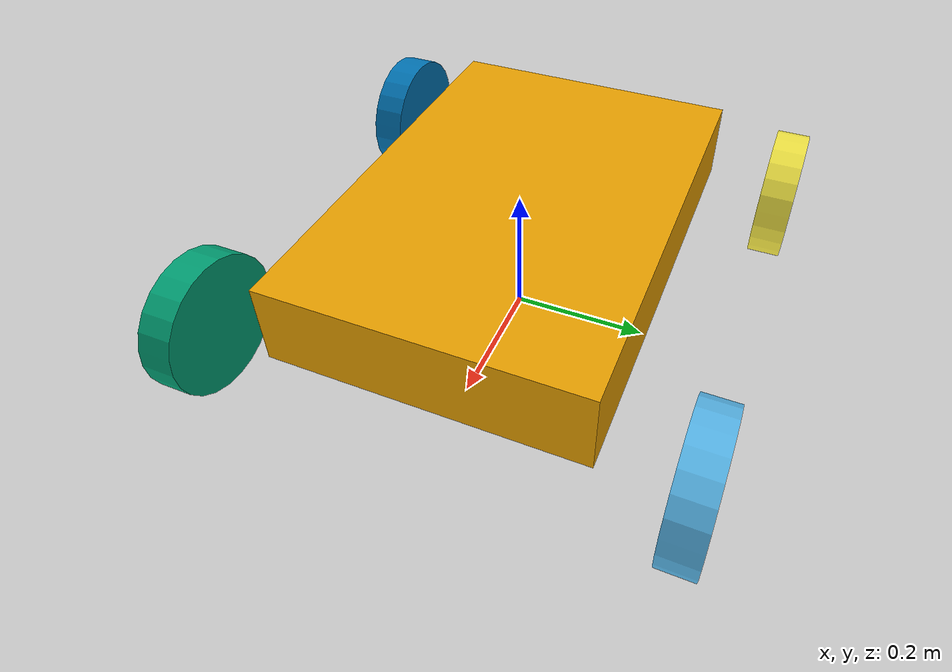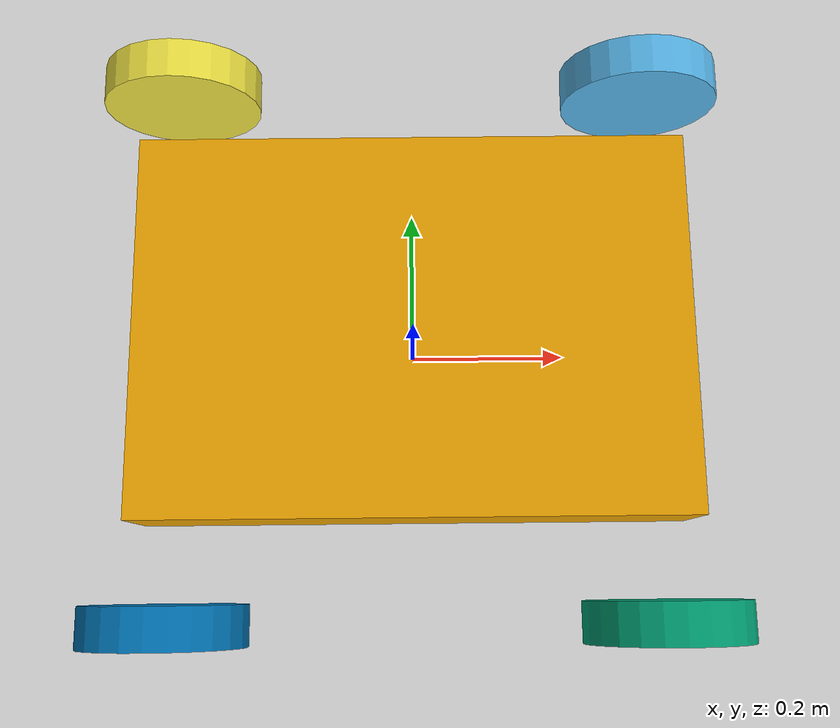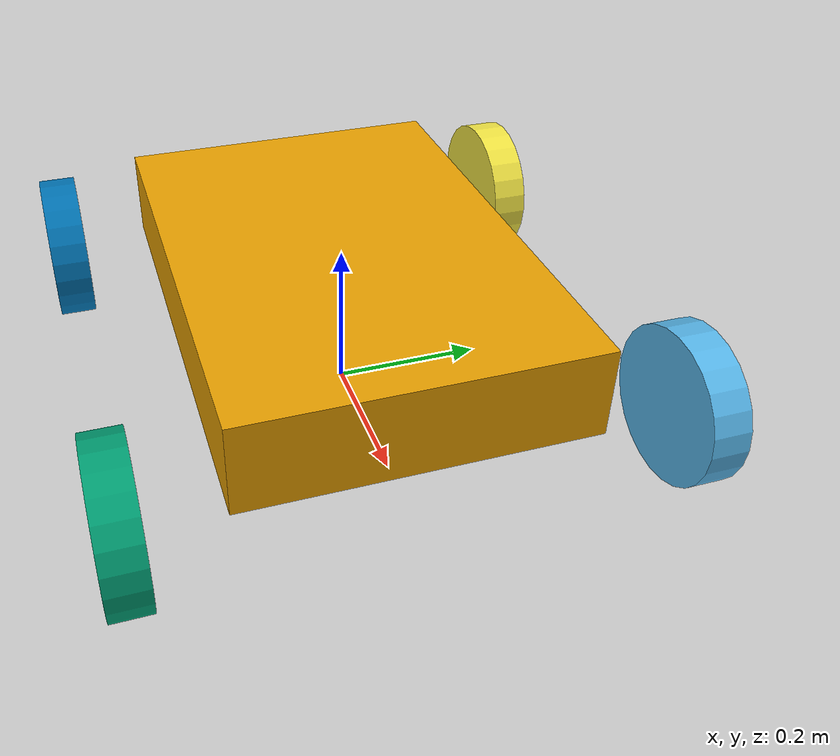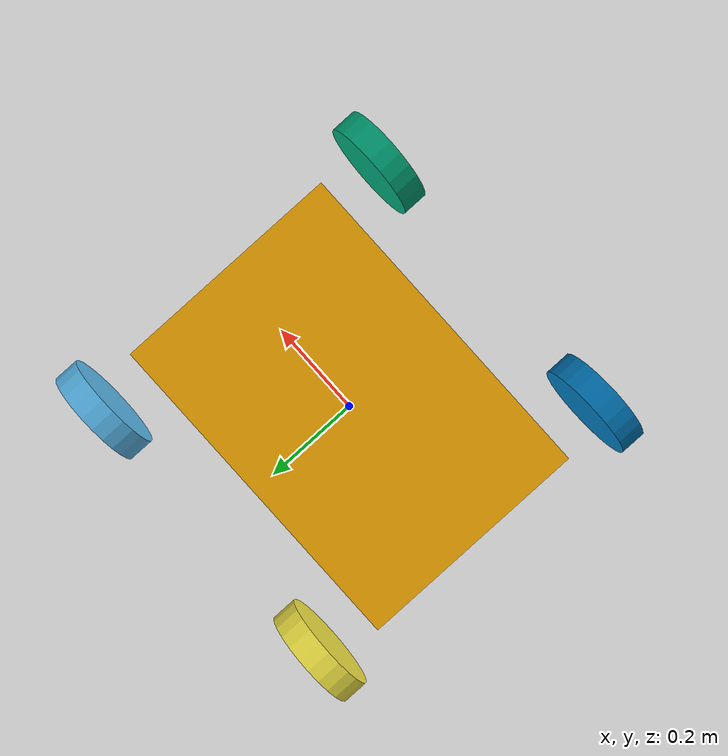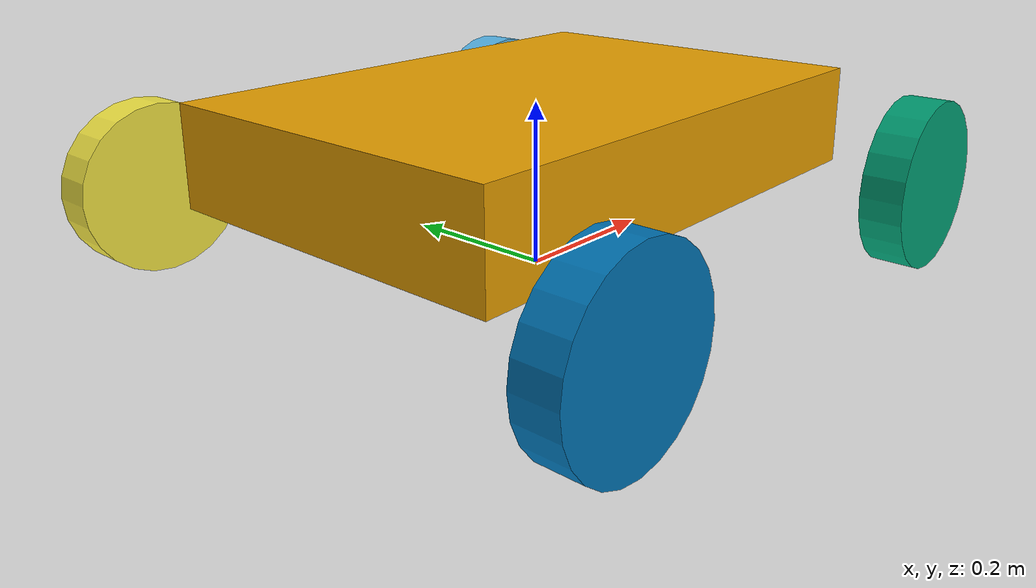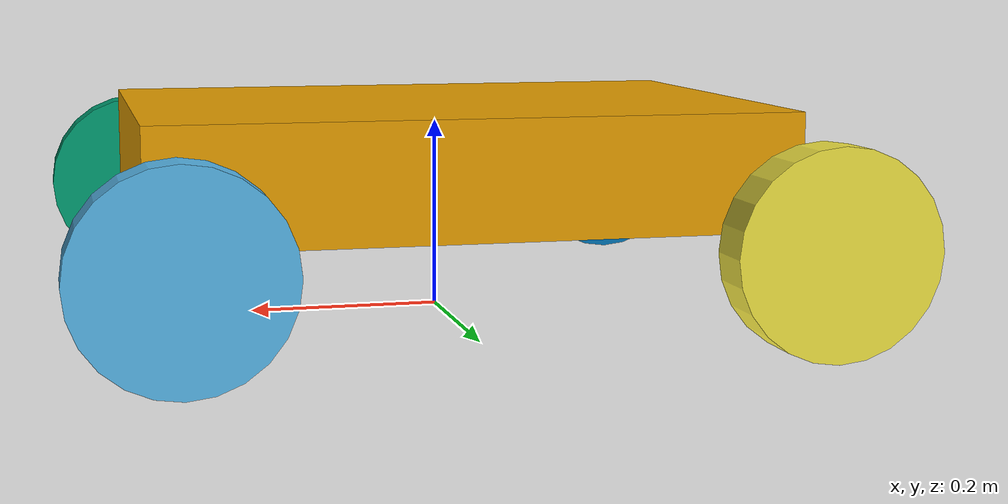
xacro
<?xml version="1.0"?>
<robot xmlns:xacro="http://www.ros.org/wiki/xacro" name="simple_4wd_rover_sameid_2bus">

  <!-- Two CAN buses -->
  <xacro:arg name="can_left"  default="can0"/>
  <xacro:arg name="can_right" default="can1"/>
  <xacro:property name="can_left"  value="$(arg can_left)"/>
  <xacro:property name="can_right" value="$(arg can_right)"/>

  <!-- Geometry (hardcoded) -->
  <xacro:property name="wheel_radius"   value="0.1016"/>
  <xacro:property name="wheel_width"    value="0.05"/>
  <xacro:property name="track_width"    value="0.6858"/>
  <xacro:property name="wheelbase"      value="0.60"/>
  <xacro:property name="chassis_length" value="0.65"/>
  <xacro:property name="chassis_width"  value="0.45"/>
  <xacro:property name="chassis_height" value="0.12"/>

  <!-- AK45-36 constants -->
  <xacro:property name="pole_pairs" value="14"/>
  <xacro:property name="gear_ratio" value="36.0"/>
  <xacro:property name="kt" value="0.11"/>

  <xacro:property name="half_track" value="${track_width * 0.5}"/>
  <xacro:property name="half_wb"    value="${wheelbase * 0.5}"/>

  <link name="base_link">
    <visual>
      <origin xyz="0 0 ${wheel_radius + chassis_height*0.5}" rpy="0 0 0"/>
      <geometry>
        <box size="${chassis_length} ${chassis_width} ${chassis_height}"/>
      </geometry>
    </visual>
  </link>

  <!-- Wheel macro -->
  <xacro:macro name="wheel" params="prefix x y mimic_of">
    <link name="${prefix}_wheel_link">
      <visual>
        <origin rpy="1.57079632679 0 0"/>
        <geometry>
          <cylinder radius="${wheel_radius}" length="${wheel_width}"/>
        </geometry>
      </visual>
    </link>

    <joint name="${prefix}_wheel_joint" type="continuous">
      <parent link="base_link"/>
      <child link="${prefix}_wheel_link"/>
      <origin xyz="${x} ${y} ${wheel_radius}" rpy="0 0 0"/>
      <axis xyz="0 1 0"/>

      <!-- Optional mimic: rear wheel joints follow the front wheel joints for TF/visualization -->
      <xacro:if value="${mimic_of != ''}">
        <mimic joint="${mimic_of}" multiplier="1.0" offset="0.0"/>
      </xacro:if>
    </joint>
  </xacro:macro>

  <!-- Front wheels are "real" actuated joints -->
  <xacro:wheel prefix="left_front"  x="${+half_wb}" y="${+half_track}" mimic_of=""/>
  <xacro:wheel prefix="right_front" x="${+half_wb}" y="${-half_track}" mimic_of=""/>

  <!-- Rear wheels mimic the corresponding front wheels -->
  <xacro:wheel prefix="left_rear"  x="${-half_wb}" y="${+half_track}" mimic_of="left_front_wheel_joint"/>
  <xacro:wheel prefix="right_rear" x="${-half_wb}" y="${-half_track}" mimic_of="right_front_wheel_joint"/>

  <!-- Helper macro for joint config -->
  <xacro:macro name="ak_joint_config" params="joint_name can_id direction">
    <joint name="${joint_name}">
      <command_interface name="velocity"/>
      <state_interface name="position"/>
      <state_interface name="velocity"/>
      <state_interface name="effort"/>
      <state_interface name="temperature"/>

      <param name="can_id">${can_id}</param>
      <param name="pole_pairs">${pole_pairs}</param>
      <param name="gear_ratio">${gear_ratio}</param>
      <param name="kt">${kt}</param>
      <param name="direction">${direction}</param>

      <!-- Optional safety clamp -->
      <param name="vel_limit">20.78</param>
    </joint>
  </xacro:macro>

  <!-- LEFT BUS hardware: only 1 actuated joint -->
  <ros2_control name="CubeMarsLeftBus" type="system">
    <hardware>
      <plugin>cubemars_ak_hardware/CubeMarsAKSystemHardware</plugin>
      <param name="can_interface">${can_left}</param>

      <!-- We'll add this param in the next section -->
      <param name="open_loop_feedback">1</param>
    </hardware>

    <!-- Both left motors have ID 111, so expose ONE joint for the left side -->
    <xacro:ak_joint_config joint_name="left_front_wheel_joint" can_id="111" direction="-1"/>
  </ros2_control>

  <!-- RIGHT BUS hardware: only 1 actuated joint -->
  <ros2_control name="CubeMarsRightBus" type="system">
    <hardware>
      <plugin>cubemars_ak_hardware/CubeMarsAKSystemHardware</plugin>
      <param name="can_interface">${can_right}</param>
      <param name="open_loop_feedback">1</param>
    </hardware>

    <!-- Both right motors have ID 111 -->
    <xacro:ak_joint_config joint_name="right_front_wheel_joint" can_id="111" direction="1"/>
  </ros2_control>

</robot>
